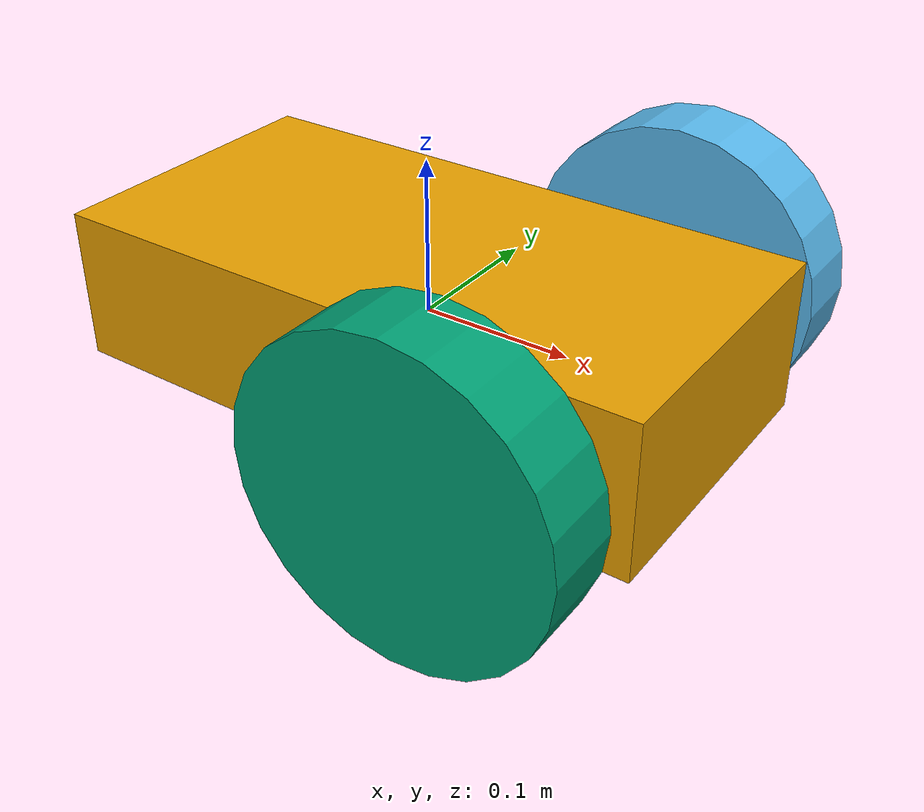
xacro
<?xml version='1.0'?>

<robot name="myrobot" xmlns:xacro="http://www.ros.org/wiki/xacro">

  <xacro:include filename="$(find my_robot_pkg)/my_robot_pkg/urdf/my_mobile_robot/my_robot.gazebo" />
  <xacro:include filename="$(find gazebo_tutorials)/urdf/materials.xacro" />
  <xacro:include filename="$(find gazebo_tutorials)/urdf/macros.xacro" />

  <link name='chassis'>
    <pose>0 0 0.1 0 0 0</pose>

    <inertial>
      <mass value="10.0"/>
      <origin xyz="0.0 0 0.1" rpy=" 0 0 0"/>
      <inertia
          ixx="0.5" ixy="0" ixz="0"
          iyy="1.0" iyz="0"
          izz="0.1"
      />
    </inertial>

    <collision name='collision'>
      <geometry>
        <box size=".4 .2 .1"/>
      </geometry>
    </collision>

    <visual name='chassis_visual'>
      <origin xyz="0 0 0" rpy=" 0 0 0"/>
      <geometry>
        <box size=".4 .2 .1"/>
      </geometry>
    </visual>

    <collision name='caster_collision'>
      <origin xyz="-0.15 0 -0.05" rpy=" 0 0 0"/>
      <geometry>
        <sphere radius="0.05"/>
      </geometry>
      <surface>
        <friction>
          <ode>
            <mu>0</mu>
            <mu2>0</mu2>
            <slip1>1.0</slip1>
            <slip2>1.0</slip2>
          </ode>
        </friction>
      </surface>
    </collision>

    <visual name='caster_visual'>
      <origin xyz="-0.15 0 -0.05" rpy=" 0 0 0"/>
      <geometry>
        <sphere radius="0.05"/>
      </geometry>
    </visual>
  </link>

  <link name="left_wheel">
    <!--origin xyz="0.1 0.13 0.1" rpy="0 1.5707 1.5707"/-->
    <collision name="collision">
      <origin xyz="0 0 0" rpy="0 1.5707 1.5707"/>
      <geometry>
        <cylinder radius="0.1" length="0.05"/>
      </geometry>
    </collision>
    <visual name="left_wheel_visual">
      <origin xyz="0 0 0" rpy="0 1.5707 1.5707"/>
      <geometry>
        <cylinder radius="0.1" length="0.05"/>
      </geometry>
    </visual>
    <inertial>
      <origin xyz="0 0 0" rpy="0 1.5707 1.5707"/>
      <mass value="5"/>
      <cylinder_inertia m="5" r="0.1" h="0.05"/>
      <inertia
        ixx="1.0" ixy="0.0" ixz="0.0"
        iyy="1.0" iyz="0.0"
        izz="1.0"/>
    </inertial>
  </link>

  <link name="right_wheel">
    <!--origin xyz="0.1 -0.13 0.1" rpy="0 1.5707 1.5707"/-->
    <collision name="collision">
      <origin xyz="0 0 0" rpy="0 1.5707 1.5707"/>
      <geometry>
        <cylinder radius="0.1" length="0.05"/>
      </geometry>
    </collision>
    <visual name="right_wheel_visual">
      <origin xyz="0 0 0" rpy="0 1.5707 1.5707"/>
      <geometry>
        <cylinder radius="0.1" length="0.05"/>
      </geometry>
    </visual>
    <inertial>
      <origin xyz="0 0 0" rpy="0 1.5707 1.5707"/>
      <mass value="5"/>
      <cylinder_inertia m="5" r="0.1" h="0.05"/>
      <inertia
        ixx="1.0" ixy="0.0" ixz="0.0"
        iyy="1.0" iyz="0.0"
        izz="1.0"/>
    </inertial>
  </link>

  <joint type="continuous" name="left_wheel_hinge">
    <origin xyz="0.1 0.15 0" rpy="0 0 0"/>
    <child link="left_wheel"/>
    <parent link="chassis"/>
    <axis xyz="0 1 0" rpy="0 0 0"/>
    <limit effort="100" velocity="100"/>
    <joint_properties damping="0.0" friction="0.0"/>
  </joint>

  <joint type="continuous" name="right_wheel_hinge">
    <origin xyz="0.1 -0.15 0" rpy="0 0 0"/>
    <child link="right_wheel"/>
    <parent link="chassis"/>
    <axis xyz="0 1 0" rpy="0 0 0"/>
    <limit effort="100" velocity="100"/>
    <joint_properties damping="0.0" friction="0.0"/>
  </joint>

</robot>

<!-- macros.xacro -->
<!--
	definitions of some macros for easier description of the robot
-->

<robot xmlns:xacro="http://www.ros.org/wiki/xacro">

  <xacro:macro name="cylinder_inertia" params="m r h">

    <inertia
          ixx="${m*(3*r*r+h*h)/12}"
    			ixy = "0"
    			ixz = "0"
    			iyy="${m*(3*r*r+h*h)/12}"
    			iyz = "0"
    			izz="${m*r*r/2}"
    />
  </xacro:macro>

  <xacro:macro name="box_inertia" params="m x y z">

    <inertia
          ixx="${m*(y*y+z*z)/12}"
    			ixy = "0"
    			ixz = "0"
    			iyy="${m*(x*x+z*z)/12}"
    			iyz = "0"
    			izz="${m*(x*x+z*z)/12}"
    />
  </xacro:macro>

  <xacro:macro name="sphere_inertia" params="m r">

    <inertia
          ixx="${2*m*r*r/5}"
    			ixy = "0"
    			ixz = "0"
    			iyy="${2*m*r*r/5}"
    			iyz = "0"
    			izz="${2*m*r*r/5}"
    />
  </xacro:macro>

  <xacro:macro name="wheel" params="lr tY">

    <link name="${lr}_wheel">
      <collision>
        <origin xyz="0 0 0"
        		rpy="${-tY*PI/2} 0 0" />
        <geometry>
          <cylinder
            length="${wheelWidth}"
            radius="${wheelRadius}"/>
        </geometry>
      </collision>

      <visual>
        <origin xyz="0 0 0"
        		rpy="${-tY*PI/2} 0 0" />
        <geometry>
          <mesh filename="package://my_robot_pkg/my_robot_pkg/my_mobile_robot/meshes/${lr}_wheel.dae" />
        </geometry>
      </visual>

      <inertial>
        <origin xyz="0 0 0"
        		rpy="${-tY*PI/2} 0 0" />
        <mass value="${wheelMass}"/>
        <xacro:cylinder_inertia
          m="${wheelMass}"
          r="${wheelRadius}"
          h="${wheelWidth}"/>
      </inertial>
    </link>

    <gazebo reference="${lr}_wheel">
      <mu1 value="1.0"/>
      <mu2 value="1.0"/>
      <kp  value="10000000.0" />

      <kd>100.0</kd>
      <minDepth>0.001</minDepth>
      <maxVel>1.0</maxVel>

      <material>Gazebo/FlatBlack</material>
    </gazebo>

    <joint name="${lr}_wheel_hinge" type="continuous">
      <parent link="chassis"/>
      <child link="${lr}_wheel"/>
      <origin
        xyz = "0 ${-tY*(wheelOffsetY+wheelWidth)} ${wheelRadius}"
        rpy = "0 0 0" />
      <axis xyz="0 1 0"
      		  rpy="0 0 0" />
      <!--limit effort="100" velocity="10"/-->
      <limit effort="0.0" velocity="0.0"/>
      <joint_properties damping="0.0" friction="0.0"/>
    </joint>

<!--
  http://gazebosim.org/tutorials/?tut=ros_control
-->

    <transmission name="${lr}_trans">
      <type>transmission_interface/SimpleTransmission</type>
      <joint name="${lr}_wheel_hinge">
        <hardwareInterface>hardware_interface/EffortJointInterface</hardwareInterface>
      </joint>
      <actuator name="${lr}Motor">
        <hardwareInterface>hardware_interface/EffortJointInterface</hardwareInterface>
        <mechanicalReduction>10</mechanicalReduction>
      </actuator>
    </transmission>

  </xacro:macro>

</robot>
